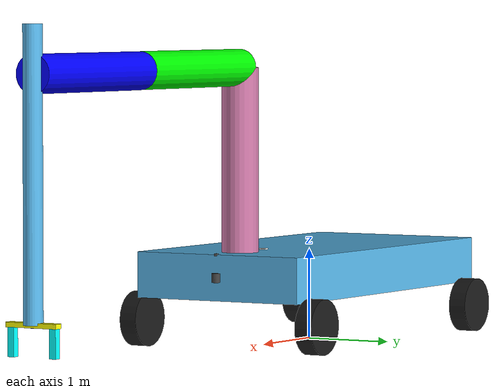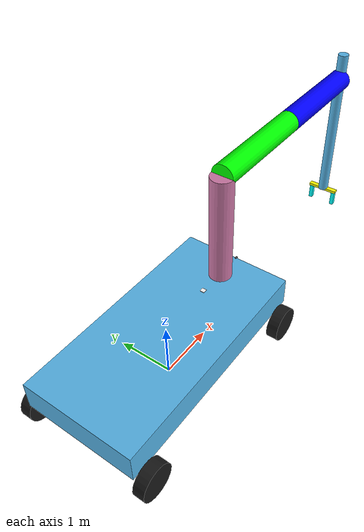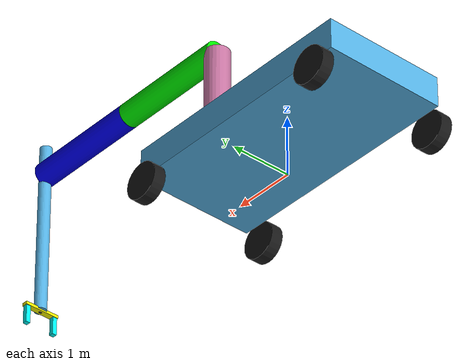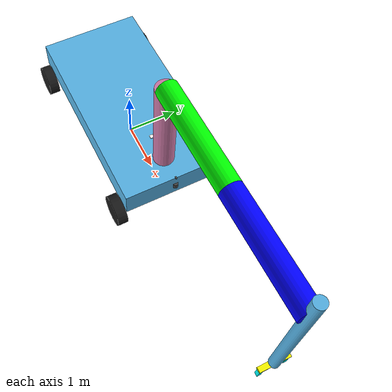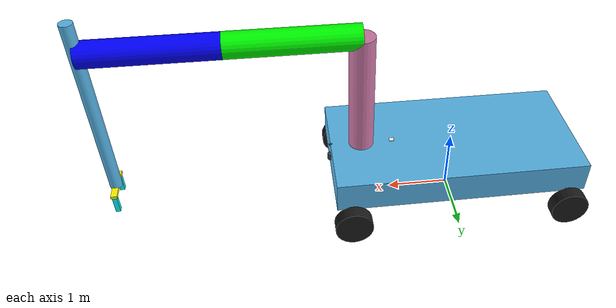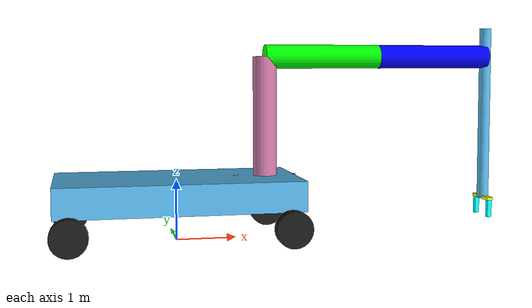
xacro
<?xml version="1.0"?>
<robot name="rover" xmlns:xacro="http://wiki.ros.org/xacro">
    <!-- includes -->
    <xacro:include filename="$(find robot_msr)/urdf/base/robot_base.urdf.xacro"/>
    <xacro:include filename="$(find robot_msr)/urdf/rueda/robot_rueda.urdf.xacro"/>
    <xacro:include filename="$(find robot_msr)/urdf/brazo/robot_brazo.urdf.xacro"/>

    <xacro:include filename="$(find robot_msr)/urdf/sensors/camera.urdf.xacro"/>
    <xacro:include filename="$(find robot_msr)/urdf/sensors/imu_sensor.urdf.xacro"/>
    <xacro:include filename="$(find robot_msr)/urdf/sensors/3d_lidar.urdf.xacro"/>
    <xacro:include filename="$(find robot_msr)/urdf/sensors/gps.urdf.xacro"/>

    <!-- Propiedades -->
    <xacro:property name="PI" value="3.1415926535897931"/>
    <xacro:property name="wheel_offset_x" value="1.75"/>
    <xacro:property name="wheel_offset_y" value="1.1"/>
    <xacro:property name="wheel_offset_z" value="-0.5"/>
    <xacro:property name="arm_offset_x" value="1.5"/>
    <xacro:property name="arm_offset_y" value="0.0"/>
    <xacro:property name="arm_offset_z" value="0.25"/>

    <!-- argumentos -->
    <xacro:arg name="robot_ns" default=""/>
    <xacro:arg name="prefix" default=""/>

    <!-- Robot Parts -->
    <!-- Base -->
    <xacro:robot_base prefix="$(arg prefix)"/>
    <!-- Wheels -->
    <xacro:robot_rueda prefix="front_right_" parent="base_link">
        <origin xyz="${wheel_offset_x} ${wheel_offset_y} ${wheel_offset_z}" rpy="${PI/2} 0 -${PI}"/>
    </xacro:robot_rueda>
    <xacro:robot_rueda prefix="back_right_" parent="base_link">
        <origin xyz="-${wheel_offset_x} ${wheel_offset_y} ${wheel_offset_z}" rpy="${PI/2} 0 -${PI}"/>
    </xacro:robot_rueda>
    <xacro:robot_rueda prefix="front_left_" parent="base_link">
        <origin xyz="${wheel_offset_x} -${wheel_offset_y} ${wheel_offset_z}" rpy="${PI/2} 0 0"/>
    </xacro:robot_rueda>
    <xacro:robot_rueda prefix="back_left_" parent="base_link">
        <origin xyz="-${wheel_offset_x} -${wheel_offset_y} ${wheel_offset_z}" rpy="${PI/2} 0 0"/>
    </xacro:robot_rueda>

    <!-- Brazo -->
    <xacro:robot_brazo parent="base_link">
        <origin xyz="${arm_offset_x} ${arm_offset_y} ${arm_offset_z}" rpy="0 0 0"/>
    </xacro:robot_brazo>

    <!-- sensores -->
    <xacro:sensor_camera node_name="front_camera" node_namespace="$(arg robot_ns)" frame_prefix="$(arg prefix)front_camera" parent="$(arg prefix)base_link" >
        <origin xyz="2 0.0 0.25" rpy="0 0 ${PI/2}"/>
    </xacro:sensor_camera>
    <xacro:sensor_camera node_name="arm_camera" node_namespace="$(arg robot_ns)" frame_prefix="$(arg prefix)arm_camera" parent="$(arg prefix)gripper_base_link" >
        <origin xyz="0.0 0.0 -0.02" rpy="0 ${PI/2} 0"/>
    </xacro:sensor_camera>
    <xacro:sensor_imu ns="$(arg robot_ns)" prefix="$(arg prefix)imu" parent="$(arg prefix)base_link">
        <origin xyz="0.0 0.0 0.0" rpy="0 0 0"/>
    </xacro:sensor_imu>
    <xacro:sensor_3d_lidar node_namespace="$(arg robot_ns)" frame_prefix="$(arg prefix)front_laser" parent="$(arg prefix)base_link" simulation="true" gpu="true">
        <origin xyz="2 0 0" rpy="0 0 -${PI/2}"/>
    </xacro:sensor_3d_lidar>
    <xacro:sensor_gps  node_namespace="$(arg robot_ns)" frame_prefix="$(arg prefix)gps" parent="$(arg prefix)base_link" simulation="true">
        <origin xyz="1.0 0.0 0.25" rpy="0 0 0"/>
    </xacro:sensor_gps>

    <!-- Gazebo ROS control plugins -->
    <xacro:include filename="$(find robot_msr)/urdf/ros2_control.urdf.xacro"/>
    <xacro:arg name="config_controllers" default="$(find robot_msr)/config/robot_controllers.yaml"/>
    <xacro:arg name="update_rate" default="20"/>
    <xacro:ros2_control/>

</robot>

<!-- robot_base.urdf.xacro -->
<robot name="robot" xmlns:xacro="http://wiki.ros.org/xacro">
    <xacro:macro name="robot_base" params="prefix">

        <!-- BASE FOOTPRINT -->
		<link name="${prefix}base_footprint" />

 		<joint name="${prefix}base_footprint_joint" type="fixed">
            <origin xyz="0 0 0.8" rpy="0 0 0" />
            <parent link="${prefix}base_footprint"/>
            <child link="${prefix}base_link" />
		</joint>

        <!-- BASE LINK -->
        <link name="${prefix}base_link">
            <inertial>
                <origin xyz="0 0 0" rpy="0 0 0"/>
                <mass value="200.0"/>
                <inertia  ixx="1.391" ixy="0.004"  ixz="0.0"  iyy="6.853"  iyz="0.0"  izz="6.125" />
            </inertial>
            <visual>
                <origin xyz="0 0 0" rpy="0 0 0"/>
                <geometry>
                    <box size="4 2 0.5"/>
                </geometry>
            </visual>
            <collision>
                <origin xyz="0 0 0" rpy="0 0 0"/>
                <geometry>
                    <box size="4 2 0.5"/>
                </geometry>
            </collision>
        </link>

    </xacro:macro>
</robot>

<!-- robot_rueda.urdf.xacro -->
<robot name="robot" xmlns:xacro="http://wiki.ros.org/xacro">

  <!-- WHEEL XACRO -->
  <xacro:macro name="robot_rueda" params="prefix parent *origin">

    <!--TIRE -->
    <joint name="${prefix}wheel_joint" type="continuous">
        <xacro:insert_block name="origin" />
        <parent link="${parent}"/>
        <child link="${prefix}wheel_link"/>
        <axis xyz="0 0 1" rpy="0 0 0" />
        <limit effort="5000" velocity="100"/>
        <dynamics damping="0.05" friction="0.1"/>
    </joint>

    <link name="${prefix}wheel_link">
        <inertial>
            <origin xyz="0 0 0" rpy="0 0 0"/>
            <mass value="10.0"/>
            <inertia ixx="0.02975" ixy="0" ixz="0" iyy="0.03087" iyz="0" izz="0.00191"/>
        </inertial>
        <visual>
            <origin xyz="0 0 0" rpy="0 0 0"/>
            <geometry>
                <cylinder length="0.2" radius="0.3"/>
            </geometry>
            <material name="${prefix}wheel_material">
                <color rgba="0.1 0.1 0.1 1.0"/>
            </material>
        </visual>
        <collision>
            <origin xyz="0 0 0" rpy="0 0 0"/>
            <geometry>
                <cylinder length="0.2" radius="0.3"/>
            </geometry>
            <surface>
                <friction>
                    <ode>
                        <mu>1.000000</mu>
                        <mu2>1.000000</mu2>
                        <fdir1>0.000000 0.000000 1.000000</fdir1>
                        <slip1>0.0050000</slip1>
                        <slip2>0.0050000</slip2>
                    </ode>
                </friction>
            </surface>
        </collision>
    </link>

    <!-- Transmission is important to link the joints and the controller (see config/rover_controller.yaml)-->
    <transmission name="${prefix}_wheel_joint_trans">
        <type>transmission_interface/SimpleTransmission</type>
        <joint name="${prefix}wheel_joint" >
            <hardwareInterface>hardware_interface/VelocityJointInterface</hardwareInterface>
        </joint>
        <actuator name="${prefix}wheel_joint_motor">
            <mechanicalReduction>1</mechanicalReduction>
        </actuator>
    </transmission>

    <gazebo reference="${prefix}wheel_link">
        <mu1>5</mu1>
        <mu2>5</mu2>
    </gazebo>

    </xacro:macro>
</robot>

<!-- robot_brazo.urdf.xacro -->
<robot name="robot" xmlns:xacro="http://wiki.ros.org/xacro">

<xacro:include filename="$(find robot_msr)/urdf/brazo/robot_gripper.urdf.xacro"/>

  <!-- BRAZO XACRO -->
  <xacro:macro name="robot_brazo" params="parent *origin">

    <joint name="base_joint" type="fixed">
        <parent link="${parent}"/>
        <child link="brazo_base_link"/>
        <xacro:insert_block name="origin" />
    </joint>

    <link name="brazo_base_link">
      <inertial>
        <mass value="10.0"/>
        <inertia
            ixx="0.00015" ixy="1e-05" ixz="0"
            iyy="0.0002" iyz="0" izz="0.0002"/>
      </inertial>
      <visual>
      <origin xyz="0 0 1" rpy="0 0 0"/>
        <geometry>
          <cylinder length="2" radius="0.2"/>
        </geometry>
      </visual>
      <collision>
      <origin xyz="0 0 1" rpy="0 0 0"/>
        <geometry>
          <cylinder length="1" radius="0.2"/>
        </geometry>
      </collision>
    </link>

    <joint name="joint_0" type="continuous">
      <parent link="brazo_base_link"/>
      <child link="eslabon_1"/>
      <origin xyz="0 0 2" rpy="0 0 0"/>
      <axis xyz="0 0 1" />
      <limit lower="-3.141592" upper="3.141592" effort="1000" velocity="100.0" />
    </joint>

    <link name="eslabon_1">
        <visual>
            <origin xyz="1 0 0" rpy="0 1.57 0"/>
            <geometry>
                <cylinder length="2" radius="0.2"/>
            </geometry>
            <material name="eslabon_1">
                <color rgba="0 1 0 1.0"/>
            </material>
        </visual>
        <collision>
            <origin xyz="1 0 0" rpy="0 1.57 0"/>
            <geometry>
                <cylinder length="2" radius="0.2"/>
            </geometry>
        </collision>
        <inertial>
            <mass value="5.0"/>
            <origin xyz="0 0 0" rpy="1.57 0 0"/>
            <inertia
                ixx="0.00015" ixy="1e-05" ixz="0"
                iyy="0.0002" iyz="0" izz="0.0002"/>
        </inertial>
    </link>

    <joint name="joint_1" type="continuous">
      <parent link="eslabon_1"/>
      <child link="eslabon_2"/>
      <origin xyz="2 0 0" rpy="0 0 0"/>
      <axis xyz="0 0 1" />
      <limit lower="-3.141592" upper="3.141592" effort="1000" velocity="100.0" />
    </joint>

    <link name="eslabon_2">
        <visual>
            <origin xyz="1 0 0" rpy="0 1.57 0"/>
            <geometry>
                <cylinder length="2" radius="0.2"/>
            </geometry>
            <material name="eslabon_2">
                <color rgba="0 0 1 1.0"/>
            </material>
        </visual>
        <collision>
            <origin xyz="1 0 0" rpy="0 1.57 0"/>
            <geometry>
                <cylinder length="2" radius="0.2"/>
            </geometry>
        </collision>
        <inertial>
            <mass value="5.0"/>
            <origin xyz="0 0 0" rpy="1.57 0 0"/>
            <inertia
                ixx="0.00015" ixy="1e-05" ixz="0"
                iyy="0.0002" iyz="0" izz="0.0002"/>
        </inertial>
    </link>

    <joint name="joint_2" type="prismatic">
      <parent link="eslabon_2"/>
      <child link="eslabon_3"/>
      <origin xyz="2 0 -1" rpy="0 0 0"/>
      <axis xyz="0 0 1" />
      <limit lower="-3.141592" upper="3.141592" effort="1000" velocity="100.0" />
    </joint>

    <link name="eslabon_3">
        <visual>
            <origin xyz="0 0 0" rpy="0 0 0"/>
            <geometry>
                <cylinder length="3" radius="0.1"/>
            </geometry>
        </visual>
        <collision>
            <origin xyz="0 0 0" rpy="0 0 0"/>
            <geometry>
                <cylinder length="3" radius="0.1"/>
            </geometry>
        </collision>
        <inertial>
            <mass value="5.0"/>
            <origin xyz="0 0 0" rpy="0 0 0"/>
            <inertia
                ixx="0.00015" ixy="1e-05" ixz="0"
                iyy="0.0002" iyz="0" izz="0.0002"/>
        </inertial>
    </link>

    <xacro:gripper parent="eslabon_3">
      <origin xyz="0 0 -1.5" rpy="0 0 0"/>
    </xacro:gripper>

  </xacro:macro>
</robot>

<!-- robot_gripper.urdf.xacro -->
<robot name="gripper" xmlns:xacro="http://wiki.ros.org/xacro">

    <xacro:macro name="gripper" params="parent *origin">

        <joint name="joint_3" type="continuous">
            <parent link="${parent}"/>
            <child link="gripper_base_link"/>
            <xacro:insert_block name="origin" />
            <axis xyz="0 0 1" />
            <limit lower="-2.7227" upper="-0.83776" effort="100" velocity="100.0" />
        </joint>

        <link name="gripper_base_link">
            <visual>
                <origin xyz="0 0 0" rpy="0 0 0"/>
                <geometry>
                    <box size="0.1 0.6 0.05"/>
                </geometry>
                <material name="gripper_base_link">
                    <color rgba="1 1 0 1.0"/>
                </material>
            </visual>
            <collision>
                <origin xyz="0 0 0" rpy="0 0 0"/>
                <geometry>
                    <box size="0.1 0.6 0.05"/>
                </geometry>
            </collision>
            <inertial>
                <origin xyz="0 0 0" rpy="0 0 0"/>
                <mass value="1.0"/>
                <inertia
                    ixx="0.00015" ixy="1e-05" ixz="0"
                    iyy="0.0002" iyz="0" izz="0.0002"/>
            </inertial>
        </link>

        <joint name="joint_right_finger" type="prismatic">
            <parent link="gripper_base_link"/>
            <child link="right_finger"/>
            <origin xyz="0 -0.25 0" rpy="0 0 0"/>
            <axis xyz="0 1 0" />
            <limit lower="-0.25" upper="0.25" effort="500" velocity="100.0" />
        </joint>

        <link name="right_finger">
            <visual>
                <origin xyz="0 0 -0.175" rpy="0 0 0"/>
                <geometry>
                    <box size="0.075 0.075 0.3"/>
                </geometry>
                <material name="right_finger">
                    <color rgba="0 1 1 1.0"/>
                </material>
            </visual>
            <collision>
                <origin xyz="0 0 -0.175" rpy="0 0 0"/>
                <geometry>
                    <box size="0.075 0.075 0.3"/>
                </geometry>
            </collision>
            <inertial>
                <mass value="1.0"/>
                <origin xyz="0 0 -0.175" rpy="0 0 0"/>
                <inertia
                    ixx="0.00015" ixy="1e-05" ixz="0"
                    iyy="0.0002" iyz="0" izz="0.0002"/>
            </inertial>
        </link>

        <joint name="joint_left_finger" type="prismatic">
            <parent link="gripper_base_link"/>
            <child link="left_finger"/>
            <origin xyz="0 0.25 0" rpy="0 0 0"/>
            <axis xyz="0 1 0" />
            <limit lower="-0.25" upper="0.25" effort="500" velocity="100.0" />
        </joint>

        <link name="left_finger">
            <visual>
                <origin xyz="0 0 -0.175" rpy="0 0 0"/>
                <geometry>
                    <box size="0.075 0.075 0.3"/>
                </geometry>
                <material name="left_finger">
                    <color rgba="0 1 1 1.0"/>
                </material>
            </visual>
            <collision>
                <origin xyz="0 0 -0.175" rpy="0 0 0"/>
                <geometry>
                    <box size="0.075 0.075 0.3"/>
                </geometry>
            </collision>
            <inertial>
                <mass value="1.0"/>
                <origin xyz="0 0 -0.175" rpy="0 0 0"/>
                <inertia
                    ixx="0.00015" ixy="1e-05" ixz="0"
                    iyy="0.0002" iyz="0" izz="0.0002"/>
            </inertial>
        </link>

    </xacro:macro>
</robot>

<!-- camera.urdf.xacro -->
<robot name="camera" xmlns:xacro="http://wiki.ros.org/xacro">
    <xacro:include filename="$(find robot_msr)/urdf/utils/utils.urdf.xacro"/>
    <!-- ####### CAMERA ####### -->
    <xacro:macro name="sensor_camera_generic"
                params="frame_prefix
                       parent
                       *origin
                       node_name:=camera
                       node_namespace:=${None}
                       topic_prefix:=~/
                       horizontal_fov:=80
                       vertical_fov:=60
                       video_width:=1280
                       video_height:=720
                       video_fps:=30">
        <!-- node_namespace is used from node_name if not set -->
        <xacro:if value="${node_namespace == None}">
        <xacro:property name="node_namespace" value="${node_name}"/>
        </xacro:if>

        <joint name="${frame_prefix}_camera_base_joint" type="fixed">
            <xacro:insert_block name="origin" />
            <parent link="${parent}"/>
            <child link="${frame_prefix}_camera_base_link" />
        </joint>
        <link name="${frame_prefix}_camera_base_link">
            <visual>
                <origin xyz="0 0 0" rpy="0 0 0"/>
                <geometry>
                    <box size="0.025 0.05 0.025"/>
                </geometry>
                <material name="light_grey">
                    <color rgba="0.35 0.35 0.35 1"/>
                </material>
            </visual>
            <collision>
                <origin xyz="0.0 0.0 0.0" rpy="0 0 0" />
                <geometry>
                    <box size="0.025 0.05 0.025"/>
                </geometry>
            </collision>
            <inertial>
                <mass value="0.135" />
                <origin xyz="0 0 0" />
                <xacro:solid_cuboid_inertia m="0.135" w="0.033" h="0.175" d="0.03" />
            </inertial>
        </link>

        <!-- Camera-->
        <joint name="${frame_prefix}_camera_joint" type="fixed">
            <origin xyz="0.0 -0.06 0.0" rpy="0.0 0.0 0.0" />
            <parent link="${frame_prefix}_camera_base_link" />
            <child link="${frame_prefix}_camera_frame" />
        </joint>
        <link name="${frame_prefix}_camera_frame"/>
        <joint name="${frame_prefix}color_optical_joint" type="fixed">
            <origin xyz="0.0 0 0.0" rpy="${-pi/2} 0.0 ${-pi/2}" />
            <parent link="${frame_prefix}_camera_frame" />
            <child link="${frame_prefix}_camera_optical_frame" />
        </joint>
        <link name="${frame_prefix}_camera_optical_frame"/>
        <gazebo reference="${frame_prefix}_camera_frame">
            <sensor name="${frame_prefix}_sensor" type="camera">
                <visualize>true</visualize>
                <update_rate>30</update_rate>
                <topic>/${frame_prefix}/image</topic>
                <camera>
                    <horizontal_fov>${radians(float(horizontal_fov))}</horizontal_fov>
                    <image>
                        <width>${video_width}</width>
                        <height>${video_height}</height>
                        <format>R8G8B8</format>
                    </image>
                    <clip>
                        <near>0.10</near>
                        <far>15.0</far>
                    </clip>
                    <noise>
                        <type>gaussian</type>
                        <mean>0.0</mean>
                        <stddev>0.007</stddev>
                    </noise>
                    <optical_frame_id>${frame_prefix}_camera_frame</optical_frame_id>
                </camera>
            </sensor>
        </gazebo>
    </xacro:macro>
    <xacro:macro name="sensor_camera"
            params="frame_prefix
                       parent
                       *origin
                       node_namespace:=cameras
                       node_name
                       topic_prefix:=~/">

        <xacro:sensor_camera_generic frame_prefix="${frame_prefix}"
                                     parent="${parent}"
                                     node_namespace="${node_namespace}"
                                     node_name="${node_name}"
                                     topic_prefix="${topic_prefix}"
                                     horizontal_fov="110"
                                     vertical_fov="70"
                                     video_width="1920"
                                     video_height="1080"
                                     video_fps="30">
            <xacro:insert_block name="origin" />
        </xacro:sensor_camera_generic>
    </xacro:macro>
</robot>

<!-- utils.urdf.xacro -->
<robot name="utils" xmlns:xacro="http://wiki.ros.org/xacro">
    <!-- ######## UTILS ######## -->
    <xacro:macro name="solid_cuboid_inertia" params="m w h d">
    <inertia  ixx="${(m*(h*h+d*d))/12}" ixy = "0" ixz = "0"
              iyy="${(m*(w*w+d*d))/12}" iyz = "0"
              izz="${(m*(w*w+h*h))/12}"/>
    </xacro:macro>

    <!-- Solid cylinder of radius r, height h and mass m -->
    <xacro:macro name="solid_cylinder_inertia" params="m r h">
    <inertia  ixx="${m*(3*r*r+h*h)/12}" ixy = "0" ixz = "0"
              iyy="${m*(3*r*r+h*h)/12}" iyz = "0"
              izz="${m*r*r/2}"/>
    </xacro:macro>
</robot>

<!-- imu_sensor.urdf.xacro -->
<robot name="imu_sensor" xmlns:xacro="http://wiki.ros.org/xacro">
    <!-- ######### IMU ######### -->
    <xacro:macro name="sensor_imu" params="prefix ns:='' topic:='imu/data' parent *origin">
        <joint name="${prefix}_joint" type="fixed">
            <axis xyz="1 0 0"/>
            <!--origin xyz="0 0 0.2825"/-->
            <xacro:insert_block name="origin"/>
            <parent link="${parent}"/>
            <child link="${prefix}_link"/>
        </joint>

        <link name="${prefix}_link">
            <inertial>
                <origin xyz="0.0 0 0.01" rpy="0 0 0" />
                <mass value="0.005" />
                <xacro:solid_cuboid_inertia m="0.005" w="0.001" h="0.001" d="0.001" />
            </inertial>
            <visual>
                <origin rpy="0 0 0" xyz="0 0 0"/>
                <geometry>
                    <box size="0.001 0.001 0.001"/>
                </geometry>
            </visual>
            <collision>
                <origin rpy="0 0 0" xyz="0 0 0"/>
                <geometry>
                    <box size="0.001 0.001 0.001"/>
                </geometry>
            </collision>
        </link>

        <gazebo reference="${prefix}_link">
            <sensor name="${prefix}_sensor" type="imu">
                <always_on>1</always_on>
                <update_rate>30</update_rate>
                <topic>${topic}</topic>
            </sensor>
        </gazebo>

    </xacro:macro>
</robot>

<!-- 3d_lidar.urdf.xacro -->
<robot name="sensor_3d_lidar" xmlns:xacro="http://wiki.ros.org/xacro">
  <xacro:macro name="sensor_3d_lidar"
               params="frame_prefix
                       parent
                       *origin
                       simulation:=true
                       node_name:=sensor_3d_lidar
                       node_namespace:=${None}
                       topic_prefix:=~/
                       gpu:=true">

    <joint name="${frame_prefix}_base_joint" type="fixed">
      <xacro:insert_block name="origin" />
      <parent link="${parent}"/>
      <child link="${frame_prefix}_base_link"/>
    </joint>
    <link name="${frame_prefix}_base_link">
      <collision>
        <origin xyz="0 0 0" rpy="0 0 0"/>
        <geometry>
          <cylinder radius="0.05" length="0.1"/>
        </geometry>
      </collision>
      <visual>
        <origin xyz="0 0 0" rpy="0 0 0"/>
        <geometry>
          <cylinder radius="0.05" length="0.1"/>
        </geometry>
        <material name="blackgray_color">
          <color rgba="0.25 0.25 0.25 1"/>
        </material>
      </visual>
      <inertial>
        <mass value="1.0" />
        <origin xyz="0 0 0.04135" />
		<xacro:solid_cylinder_inertia m="1.0" r="0.05" h="0.1" />
      </inertial>
    </link>
    <joint name="${frame_prefix}_joint" type="fixed">
      <parent link="${frame_prefix}_base_link"/>
      <child link="${frame_prefix}_link"/>
      <origin xyz="0.0 0 0.0635" rpy="0 0 0"/>
    </joint>
    <link name="${frame_prefix}_link"/>
      <gazebo reference="${frame_prefix}_link">
        <sensor name='gpu_lidar' type='gpu_lidar'>
          <pose relative_to='${frame_prefix}_link'>0 0 0 0 0 0</pose>
          <topic>${frame_prefix}_sensor</topic>
          <update_rate>20</update_rate>
          <gz_frame_id>${frame_prefix}_link</gz_frame_id>
          <lidar>
            <scan>
              <horizontal>
                <samples>450</samples>
                <resolution>1</resolution>
                <min_angle>-3.141592</min_angle>
                <max_angle>3.141592</max_angle>
              </horizontal>
              <vertical>
                <samples>32</samples>
                <resolution>1</resolution>
                <min_angle>-0.436332</min_angle>
                <max_angle>0.08726</max_angle>
              </vertical>
            </scan>
            <range>
              <min>0.2</min>
              <max>90.0</max>
              <resolution>0.02</resolution>
            </range>
          </lidar>
          <visualize>true</visualize>
        </sensor>
      </gazebo>
  </xacro:macro>
</robot>

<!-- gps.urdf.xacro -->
<robot name="sensor_gps" xmlns:xacro="http://wiki.ros.org/xacro">
	<xacro:macro name="sensor_gps"
               params="frame_prefix
                       parent
                       *origin
                       simulation:=false
                       node_name:=gps
                       node_namespace:=${None}
                       topic_prefix:=~/
                       update_rate:=5.0">

	  <joint name="${frame_prefix}_joint" type="fixed">
	    <xacro:insert_block name="origin"/>
	    <parent link="${parent}"/>
	    <child link="${frame_prefix}_base_link"/>
	  </joint>
	  <link name="${frame_prefix}_base_link">
      <inertial>
        <origin xyz="0.0 0 0.015" rpy="0 0 0" />
        <mass value="0.2" />
        <xacro:solid_cuboid_inertia m="0.2" w="0.081" h="0.081" d="0.03" />
      </inertial>
		<visual>
			<origin rpy="0 0 0" xyz="0 0 0"/>
			<material name="gps_color">
				<color rgba="1 1 1 1"/>
			</material>
			<geometry>
			<box size="0.075 0.075 0.025"/>
			</geometry>
		</visual>
	    <collision>
	      <origin rpy="0 0 0" xyz="0 0 0"/>
	      <geometry>
	        <box size="0.075 0.075 0.025"/>
	      </geometry>
	    </collision>
	  </link>

    <gazebo reference="${frame_prefix}_base_link">
      <sensor name="${frame_prefix}_sensor" type="navsat">
        <always_on>1</always_on>
        <update_rate>${update_rate}</update_rate>
        <topic>/robot/gps/fix</topic>
        <gz_frame_id>${frame_prefix}_base_link</gz_frame_id>
      </sensor>
    </gazebo>

  </xacro:macro>
</robot>
